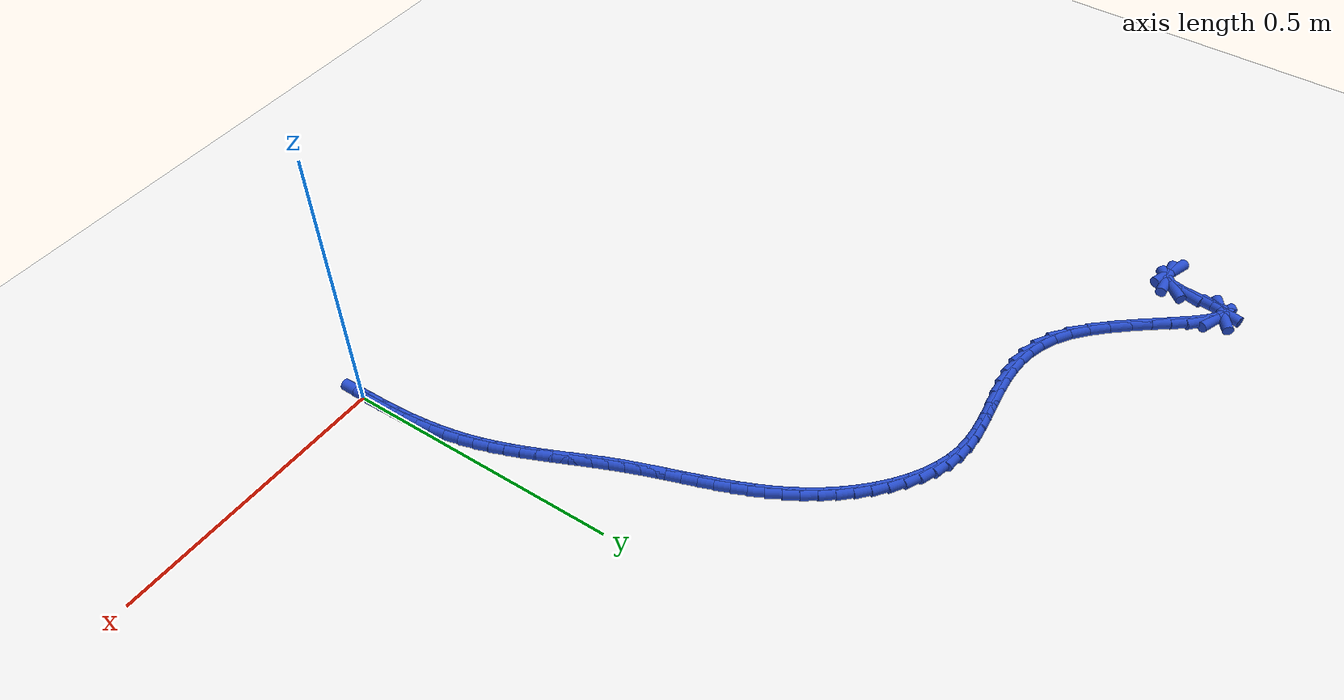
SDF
<sdf version="1.6">
 <world name="default">
  <model name="ground_plane">
   <static>1</static>
   <link name="link">
    <collision name="collision">
     <geometry><plane><normal>0 0 1</normal><size>100 100</size></plane></geometry>
     <surface><friction><ode><mu>100</mu><mu2>50</mu2></ode></friction></surface>
    </collision>
    <visual name="visual">
     <cast_shadows>0</cast_shadows>
     <geometry><plane><normal>0 0 1</normal><size>100 100</size></plane></geometry>
     <material>
      <script><uri>file://media/materials/scripts/gazebo.material</uri><name>Gazebo/WhiteGlow</name></script>
     </material>
    </visual>
   </link>
  </model>
  <model name="line">
   <link name="link_0">
    <pose>6.505213034913027e-19 -5.551115123125783e-17 0.01 0 1.57 -1.5686087319512148</pose>
    <collision name="collision">
     <geometry><cylinder><radius>0.01</radius><length>0.08</length></cylinder></geometry>
    </collision>
    <visual name="visual">
     <material>
      <script><name>Gazebo/Blue</name><uri>file://media/materials/scripts/gazebo.material</uri></script>
     </material>
     <geometry><cylinder><radius>0.01</radius><length>0.08</length></cylinder></geometry>
    </visual>
   </link>
   <link name="link_1">
    <pose>-5.87740264083111e-05 0.026866918626301892 0.01 0 1.57 -1.547128762032059</pose>
    <collision name="collision">
     <geometry><cylinder><radius>0.01</radius><length>0.08</length></cylinder></geometry>
    </collision>
    <visual name="visual">
     <material>
      <script><name>Gazebo/Blue</name><uri>file://media/materials/scripts/gazebo.material</uri></script>
     </material>
     <geometry><cylinder><radius>0.01</radius><length>0.08</length></cylinder></geometry>
    </visual>
   </link>
   <link name="link_2">
    <pose>-0.0006926571728951053 0.05364469619251644 0.01 0 1.57 -1.5219949270998772</pose>
    <collision name="collision">
     <geometry><cylinder><radius>0.01</radius><length>0.08</length></cylinder></geometry>
    </collision>
    <visual name="visual">
     <material>
      <script><name>Gazebo/Blue</name><uri>file://media/materials/scripts/gazebo.material</uri></script>
     </material>
     <geometry><cylinder><radius>0.01</radius><length>0.08</length></cylinder></geometry>
    </visual>
   </link>
   <link name="link_3">
    <pose>-0.0019944166031671848 0.08029815000768363 0.01 0 1.57 -1.4931086927876336</pose>
    <collision name="collision">
     <geometry><cylinder><radius>0.01</radius><length>0.08</length></cylinder></geometry>
    </collision>
    <visual name="visual">
     <material>
      <script><name>Gazebo/Blue</name><uri>file://media/materials/scripts/gazebo.material</uri></script>
     </material>
     <geometry><cylinder><radius>0.01</radius><length>0.08</length></cylinder></geometry>
    </visual>
   </link>
   <link name="link_4">
    <pose>-0.00405681948093135 0.10679209738084348 0.01 0 1.57 -1.4603767294404082</pose>
    <collision name="collision">
     <geometry><cylinder><radius>0.01</radius><length>0.08</length></cylinder></geometry>
    </collision>
    <visual name="visual">
     <material>
      <script><name>Gazebo/Blue</name><uri>file://media/materials/scripts/gazebo.material</uri></script>
     </material>
     <geometry><cylinder><radius>0.01</radius><length>0.08</length></cylinder></geometry>
    </visual>
   </link>
   <link name="link_5">
    <pose>-0.006972632969894407 0.13309135562103608 0.01 0 1.57 -1.4237232285010475</pose>
    <collision name="collision">
     <geometry><cylinder><radius>0.01</radius><length>0.08</length></cylinder></geometry>
    </collision>
    <visual name="visual">
     <material>
      <script><name>Gazebo/Blue</name><uri>file://media/materials/scripts/gazebo.material</uri></script>
     </material>
     <geometry><cylinder><radius>0.01</radius><length>0.08</length></cylinder></geometry>
    </visual>
   </link>
   <link name="link_6">
    <pose>-0.010834624233763152 0.1591607420373014 0.01 0 1.57 -1.3831049552878407</pose>
    <collision name="collision">
     <geometry><cylinder><radius>0.01</radius><length>0.08</length></cylinder></geometry>
    </collision>
    <visual name="visual">
     <material>
      <script><name>Gazebo/Blue</name><uri>file://media/materials/scripts/gazebo.material</uri></script>
     </material>
     <geometry><cylinder><radius>0.01</radius><length>0.08</length></cylinder></geometry>
    </visual>
   </link>
   <link name="link_7">
    <pose>-0.015735560436244394 0.18496507393867967 0.01 0 1.57 -1.3385288146965135</pose>
    <collision name="collision">
     <geometry><cylinder><radius>0.01</radius><length>0.08</length></cylinder></geometry>
    </collision>
    <visual name="visual">
     <material>
      <script><name>Gazebo/Blue</name><uri>file://media/materials/scripts/gazebo.material</uri></script>
     </material>
     <geometry><cylinder><radius>0.01</radius><length>0.08</length></cylinder></geometry>
    </visual>
   </link>
   <link name="link_8">
    <pose>-0.02176820874104493 0.2104691686342107 0.01 0 1.57 -1.2903570548218142</pose>
    <collision name="collision">
     <geometry><cylinder><radius>0.01</radius><length>0.08</length></cylinder></geometry>
    </collision>
    <visual name="visual">
     <material>
      <script><name>Gazebo/Blue</name><uri>file://media/materials/scripts/gazebo.material</uri></script>
     </material>
     <geometry><cylinder><radius>0.01</radius><length>0.08</length></cylinder></geometry>
    </visual>
   </link>
   <link name="link_9">
    <pose>-0.02901818906126157 0.23564009117872278 0.01 0 1.57 -1.2446635823595167</pose>
    <collision name="collision">
     <geometry><cylinder><radius>0.01</radius><length>0.08</length></cylinder></geometry>
    </collision>
    <visual name="visual">
     <material>
      <script><name>Gazebo/Blue</name><uri>file://media/materials/scripts/gazebo.material</uri></script>
     </material>
     <geometry><cylinder><radius>0.01</radius><length>0.08</length></cylinder></geometry>
    </visual>
   </link>
   <link name="link_10">
    <pose>-0.03742315385184375 0.26049144105671185 0.01 0 1.57 -1.2071405693610882</pose>
    <collision name="collision">
     <geometry><cylinder><radius>0.01</radius><length>0.08</length></cylinder></geometry>
    </collision>
    <visual name="visual">
     <material>
      <script><name>Gazebo/Blue</name><uri>file://media/materials/scripts/gazebo.material</uri></script>
     </material>
     <geometry><cylinder><radius>0.01</radius><length>0.08</length></cylinder></geometry>
    </visual>
   </link>
   <link name="link_11">
    <pose>-0.04678137299843718 0.28508065231230845 0.01 0 1.57 -1.1779847370844352</pose>
    <collision name="collision">
     <geometry><cylinder><radius>0.01</radius><length>0.08</length></cylinder></geometry>
    </collision>
    <visual name="visual">
     <material>
      <script><name>Gazebo/Blue</name><uri>file://media/materials/scripts/gazebo.material</uri></script>
     </material>
     <geometry><cylinder><radius>0.01</radius><length>0.08</length></cylinder></geometry>
    </visual>
   </link>
   <link name="link_12">
    <pose>-0.056885688036905566 0.30946686615664004 0.01 0 1.57 -1.157097907797772</pose>
    <collision name="collision">
     <geometry><cylinder><radius>0.01</radius><length>0.08</length></cylinder></geometry>
    </collision>
    <visual name="visual">
     <material>
      <script><name>Gazebo/Blue</name><uri>file://media/materials/scripts/gazebo.material</uri></script>
     </material>
     <geometry><cylinder><radius>0.01</radius><length>0.08</length></cylinder></geometry>
    </visual>
   </link>
   <link name="link_13">
    <pose>-0.06752894050311259 0.33370922380083395 0.01 0 1.57 -1.1443649214348135</pose>
    <collision name="collision">
     <geometry><cylinder><radius>0.01</radius><length>0.08</length></cylinder></geometry>
    </collision>
    <visual name="visual">
     <material>
      <script><name>Gazebo/Blue</name><uri>file://media/materials/scripts/gazebo.material</uri></script>
     </material>
     <geometry><cylinder><radius>0.01</radius><length>0.08</length></cylinder></geometry>
    </visual>
   </link>
   <link name="link_14">
    <pose>-0.07850397193292197 0.3578668664560176 0.01 0 1.57 -1.139695200061825</pose>
    <collision name="collision">
     <geometry><cylinder><radius>0.01</radius><length>0.08</length></cylinder></geometry>
    </collision>
    <visual name="visual">
     <material>
      <script><name>Gazebo/Blue</name><uri>file://media/materials/scripts/gazebo.material</uri></script>
     </material>
     <geometry><cylinder><radius>0.01</radius><length>0.08</length></cylinder></geometry>
    </visual>
   </link>
   <link name="link_15">
    <pose>-0.08960362386219746 0.3819989353333187 0.01 0 1.57 -1.1430467912441684</pose>
    <collision name="collision">
     <geometry><cylinder><radius>0.01</radius><length>0.08</length></cylinder></geometry>
    </collision>
    <visual name="visual">
     <material>
      <script><name>Gazebo/Blue</name><uri>file://media/materials/scripts/gazebo.material</uri></script>
     </material>
     <geometry><cylinder><radius>0.01</radius><length>0.08</length></cylinder></geometry>
    </visual>
   </link>
   <link name="link_16">
    <pose>-0.10062073782680275 0.4061645716438645 0.01 0 1.57 -1.1544347715538974</pose>
    <collision name="collision">
     <geometry><cylinder><radius>0.01</radius><length>0.08</length></cylinder></geometry>
    </collision>
    <visual name="visual">
     <material>
      <script><name>Gazebo/Blue</name><uri>file://media/materials/scripts/gazebo.material</uri></script>
     </material>
     <geometry><cylinder><radius>0.01</radius><length>0.08</length></cylinder></geometry>
    </visual>
   </link>
   <link name="link_17">
    <pose>-0.11134815536260154 0.4304229165987823 0.01 0 1.57 -1.1739037138108221</pose>
    <collision name="collision">
     <geometry><cylinder><radius>0.01</radius><length>0.08</length></cylinder></geometry>
    </collision>
    <visual name="visual">
     <material>
      <script><name>Gazebo/Blue</name><uri>file://media/materials/scripts/gazebo.material</uri></script>
     </material>
     <geometry><cylinder><radius>0.01</radius><length>0.08</length></cylinder></geometry>
    </visual>
   </link>
   <link name="link_18">
    <pose>-0.12157925752687783 0.4548329469520125 0.01 0 1.57 -1.1970475792879767</pose>
    <collision name="collision">
     <geometry><cylinder><radius>0.01</radius><length>0.08</length></cylinder></geometry>
    </collision>
    <visual name="visual">
     <material>
      <script><name>Gazebo/Blue</name><uri>file://media/materials/scripts/gazebo.material</uri></script>
     </material>
     <geometry><cylinder><radius>0.01</radius><length>0.08</length></cylinder></geometry>
    </visual>
   </link>
   <link name="link_19">
    <pose>-0.1312214257653941 0.4794188898025247 0.01 0 1.57 -1.2138346116632008</pose>
    <collision name="collision">
     <geometry><cylinder><radius>0.01</radius><length>0.08</length></cylinder></geometry>
    </collision>
    <visual name="visual">
     <material>
      <script><name>Gazebo/Blue</name><uri>file://media/materials/scripts/gazebo.material</uri></script>
     </material>
     <geometry><cylinder><radius>0.01</radius><length>0.08</length></cylinder></geometry>
    </visual>
   </link>
   <link name="link_20">
    <pose>-0.14043620599054032 0.5041274977104818 0.01 0 1.57 -1.2228487040770044</pose>
    <collision name="collision">
     <geometry><cylinder><radius>0.01</radius><length>0.08</length></cylinder></geometry>
    </collision>
    <visual name="visual">
     <material>
      <script><name>Gazebo/Blue</name><uri>file://media/materials/scripts/gazebo.material</uri></script>
     </material>
     <geometry><cylinder><radius>0.01</radius><length>0.08</length></cylinder></geometry>
    </visual>
   </link>
   <link name="link_21">
    <pose>-0.14941950550877955 0.5288950491788588 0.01 0 1.57 -1.2240569381717366</pose>
    <collision name="collision">
     <geometry><cylinder><radius>0.01</radius><length>0.08</length></cylinder></geometry>
    </collision>
    <visual name="visual">
     <material>
      <script><name>Gazebo/Blue</name><uri>file://media/materials/scripts/gazebo.material</uri></script>
     </material>
     <geometry><cylinder><radius>0.01</radius><length>0.08</length></cylinder></geometry>
    </visual>
   </link>
   <link name="link_22">
    <pose>-0.15836723162657484 0.55365782271063 0.01 0 1.57 -1.2174433859761682</pose>
    <collision name="collision">
     <geometry><cylinder><radius>0.01</radius><length>0.08</length></cylinder></geometry>
    </collision>
    <visual name="visual">
     <material>
      <script><name>Gazebo/Blue</name><uri>file://media/materials/scripts/gazebo.material</uri></script>
     </material>
     <geometry><cylinder><radius>0.01</radius><length>0.08</length></cylinder></geometry>
    </visual>
   </link>
   <link name="link_23">
    <pose>-0.16747529165038938 0.5783520968087708 0.01 0 1.57 -1.2030070187508424</pose>
    <collision name="collision">
     <geometry><cylinder><radius>0.01</radius><length>0.08</length></cylinder></geometry>
    </collision>
    <visual name="visual">
     <material>
      <script><name>Gazebo/Blue</name><uri>file://media/materials/scripts/gazebo.material</uri></script>
     </material>
     <geometry><cylinder><radius>0.01</radius><length>0.08</length></cylinder></geometry>
    </visual>
   </link>
   <link name="link_24">
    <pose>-0.1769395928866861 0.6029141499762559 0.01 0 1.57 -1.1807738515280444</pose>
    <collision name="collision">
     <geometry><cylinder><radius>0.01</radius><length>0.08</length></cylinder></geometry>
    </collision>
    <visual name="visual">
     <material>
      <script><name>Gazebo/Blue</name><uri>file://media/materials/scripts/gazebo.material</uri></script>
     </material>
     <geometry><cylinder><radius>0.01</radius><length>0.08</length></cylinder></geometry>
    </visual>
   </link>
   <link name="link_25">
    <pose>-0.18695604264192822 0.6272802607160602 0.01 0 1.57 -1.1508230185935548</pose>
    <collision name="collision">
     <geometry><cylinder><radius>0.01</radius><length>0.08</length></cylinder></geometry>
    </collision>
    <visual name="visual">
     <material>
      <script><name>Gazebo/Blue</name><uri>file://media/materials/scripts/gazebo.material</uri></script>
     </material>
     <geometry><cylinder><radius>0.01</radius><length>0.08</length></cylinder></geometry>
    </visual>
   </link>
   <link name="link_26">
    <pose>-0.1977205482225787 0.6513867075311587 0.01 0 1.57 -1.113325383090786</pose>
    <collision name="collision">
     <geometry><cylinder><radius>0.01</radius><length>0.08</length></cylinder></geometry>
    </collision>
    <visual name="visual">
     <material>
      <script><name>Gazebo/Blue</name><uri>file://media/materials/scripts/gazebo.material</uri></script>
     </material>
     <geometry><cylinder><radius>0.01</radius><length>0.08</length></cylinder></geometry>
    </visual>
   </link>
   <link name="link_27">
    <pose>-0.20942901693510063 0.6751697689245258 0.01 0 1.57 -1.068591139055498</pose>
    <collision name="collision">
     <geometry><cylinder><radius>0.01</radius><length>0.08</length></cylinder></geometry>
    </collision>
    <visual name="visual">
     <material>
      <script><name>Gazebo/Blue</name><uri>file://media/materials/scripts/gazebo.material</uri></script>
     </material>
     <geometry><cylinder><radius>0.01</radius><length>0.08</length></cylinder></geometry>
    </visual>
   </link>
   <link name="link_28">
    <pose>-0.22227735608595725 0.6985657233991371 0.01 0 1.57 -1.0171195089741287</pose>
    <collision name="collision">
     <geometry><cylinder><radius>0.01</radius><length>0.08</length></cylinder></geometry>
    </collision>
    <visual name="visual">
     <material>
      <script><name>Gazebo/Blue</name><uri>file://media/materials/scripts/gazebo.material</uri></script>
     </material>
     <geometry><cylinder><radius>0.01</radius><length>0.08</length></cylinder></geometry>
    </visual>
   </link>
   <link name="link_29">
    <pose>-0.2364614729816115 0.721510849457967 0.01 0 1.57 -0.9597408084259309</pose>
    <collision name="collision">
     <geometry><cylinder><radius>0.01</radius><length>0.08</length></cylinder></geometry>
    </collision>
    <visual name="visual">
     <material>
      <script><name>Gazebo/Blue</name><uri>file://media/materials/scripts/gazebo.material</uri></script>
     </material>
     <geometry><cylinder><radius>0.01</radius><length>0.08</length></cylinder></geometry>
    </visual>
   </link>
   <link name="link_30">
    <pose>-0.25217080556211285 0.7439370180234688 0.01 0 1.57 -0.899408453424222</pose>
    <collision name="collision">
     <geometry><cylinder><radius>0.01</radius><length>0.08</length></cylinder></geometry>
    </collision>
    <visual name="visual">
     <material>
      <script><name>Gazebo/Blue</name><uri>file://media/materials/scripts/gazebo.material</uri></script>
     </material>
     <geometry><cylinder><radius>0.01</radius><length>0.08</length></cylinder></geometry>
    </visual>
   </link>
   <link name="link_31">
    <pose>-0.2694367490758823 0.7656684255033538 0.01 0 1.57 -0.8375553751071845</pose>
    <collision name="collision">
     <geometry><cylinder><radius>0.01</radius><length>0.08</length></cylinder></geometry>
    </collision>
    <visual name="visual">
     <material>
      <script><name>Gazebo/Blue</name><uri>file://media/materials/scripts/gazebo.material</uri></script>
     </material>
     <geometry><cylinder><radius>0.01</radius><length>0.08</length></cylinder></geometry>
    </visual>
   </link>
   <link name="link_32">
    <pose>-0.28812734133071144 0.7864179728511262 0.01 0 1.57 -0.77271760801657</pose>
    <collision name="collision">
     <geometry><cylinder><radius>0.01</radius><length>0.08</length></cylinder></geometry>
    </collision>
    <visual name="visual">
     <material>
      <script><name>Gazebo/Blue</name><uri>file://media/materials/scripts/gazebo.material</uri></script>
     </material>
     <geometry><cylinder><radius>0.01</radius><length>0.08</length></cylinder></geometry>
    </visual>
   </link>
   <link name="link_33">
    <pose>-0.3081030874536311 0.805893429003508 0.01 0 1.57 -0.7032817532625969</pose>
    <collision name="collision">
     <geometry><cylinder><radius>0.01</radius><length>0.08</length></cylinder></geometry>
    </collision>
    <visual name="visual">
     <material>
      <script><name>Gazebo/Blue</name><uri>file://media/materials/scripts/gazebo.material</uri></script>
     </material>
     <geometry><cylinder><radius>0.01</radius><length>0.08</length></cylinder></geometry>
    </visual>
   </link>
   <link name="link_34">
    <pose>-0.3292244925716726 0.8238025628972219 0.01 0 1.57 -0.6275478799582125</pose>
    <collision name="collision">
     <geometry><cylinder><radius>0.01</radius><length>0.08</length></cylinder></geometry>
    </collision>
    <visual name="visual">
     <material>
      <script><name>Gazebo/Blue</name><uri>file://media/materials/scripts/gazebo.material</uri></script>
     </material>
     <geometry><cylinder><radius>0.01</radius><length>0.08</length></cylinder></geometry>
    </visual>
   </link>
   <link name="link_35">
    <pose>-0.35135206181186673 0.83985314346899 0.01 0 1.57 -0.5437147174878636</pose>
    <collision name="collision">
     <geometry><cylinder><radius>0.01</radius><length>0.08</length></cylinder></geometry>
    </collision>
    <visual name="visual">
     <material>
      <script><name>Gazebo/Blue</name><uri>file://media/materials/scripts/gazebo.material</uri></script>
     </material>
     <geometry><cylinder><radius>0.01</radius><length>0.08</length></cylinder></geometry>
    </visual>
   </link>
   <link name="link_36">
    <pose>-0.3743463003012447 0.8537529396555349 0.01 0 1.57 -0.4499327340533218</pose>
    <collision name="collision">
     <geometry><cylinder><radius>0.01</radius><length>0.08</length></cylinder></geometry>
    </collision>
    <visual name="visual">
     <material>
      <script><name>Gazebo/Blue</name><uri>file://media/materials/scripts/gazebo.material</uri></script>
     </material>
     <geometry><cylinder><radius>0.01</radius><length>0.08</length></cylinder></geometry>
    </visual>
   </link>
   <link name="link_37">
    <pose>-0.39806771316683776 0.8652097203935789 0.01 0 1.57 -0.34447214646214636</pose>
    <collision name="collision">
     <geometry><cylinder><radius>0.01</radius><length>0.08</length></cylinder></geometry>
    </collision>
    <visual name="visual">
     <material>
      <script><name>Gazebo/Blue</name><uri>file://media/materials/scripts/gazebo.material</uri></script>
     </material>
     <geometry><cylinder><radius>0.01</radius><length>0.08</length></cylinder></geometry>
    </visual>
   </link>
   <link name="link_38">
    <pose>-0.4223768055356765 0.8739312546198446 0.01 0 1.57 -0.22607082859793198</pose>
    <collision name="collision">
     <geometry><cylinder><radius>0.01</radius><length>0.08</length></cylinder></geometry>
    </collision>
    <visual name="visual">
     <material>
      <script><name>Gazebo/Blue</name><uri>file://media/materials/scripts/gazebo.material</uri></script>
     </material>
     <geometry><cylinder><radius>0.01</radius><length>0.08</length></cylinder></geometry>
    </visual>
   </link>
   <link name="link_39">
    <pose>-0.4471341040816441 0.87962549690458 0.01 0 1.57 -0.10298715858292842</pose>
    <collision name="collision">
     <geometry><cylinder><radius>0.01</radius><length>0.08</length></cylinder></geometry>
    </collision>
    <visual name="visual">
     <material>
      <script><name>Gazebo/Blue</name><uri>file://media/materials/scripts/gazebo.material</uri></script>
     </material>
     <geometry><cylinder><radius>0.01</radius><length>0.08</length></cylinder></geometry>
    </visual>
   </link>
   <link name="link_40">
    <pose>-0.47222548090375766 0.8822187613588304 0.01 0 1.57 -0.002320954017408585</pose>
    <collision name="collision">
     <geometry><cylinder><radius>0.01</radius><length>0.08</length></cylinder></geometry>
    </collision>
    <visual name="visual">
     <material>
      <script><name>Gazebo/Blue</name><uri>file://media/materials/scripts/gazebo.material</uri></script>
     </material>
     <geometry><cylinder><radius>0.01</radius><length>0.08</length></cylinder></geometry>
    </visual>
   </link>
   <link name="link_41">
    <pose>-0.4976111311162816 0.8822776803914713 0.01 0 1.57 0.06974142340890807</pose>
    <collision name="collision">
     <geometry><cylinder><radius>0.01</radius><length>0.08</length></cylinder></geometry>
    </collision>
    <visual name="visual">
     <material>
      <script><name>Gazebo/Blue</name><uri>file://media/materials/scripts/gazebo.material</uri></script>
     </material>
     <geometry><cylinder><radius>0.01</radius><length>0.08</length></cylinder></geometry>
    </visual>
   </link>
   <link name="link_42">
    <pose>-0.5232648028691199 0.8804856504673396 0.01 0 1.57 0.11379594841330783</pose>
    <collision name="collision">
     <geometry><cylinder><radius>0.01</radius><length>0.08</length></cylinder></geometry>
    </collision>
    <visual name="visual">
     <material>
      <script><name>Gazebo/Blue</name><uri>file://media/materials/scripts/gazebo.material</uri></script>
     </material>
     <geometry><cylinder><radius>0.01</radius><length>0.08</length></cylinder></geometry>
    </visual>
   </link>
   <link name="link_43">
    <pose>-0.5491602443121776 0.8775260680512726 0.01 0 1.57 0.13113178850228505</pose>
    <collision name="collision">
     <geometry><cylinder><radius>0.01</radius><length>0.08</length></cylinder></geometry>
    </collision>
    <visual name="visual">
     <material>
      <script><name>Gazebo/Blue</name><uri>file://media/materials/scripts/gazebo.material</uri></script>
     </material>
     <geometry><cylinder><radius>0.01</radius><length>0.08</length></cylinder></geometry>
    </visual>
   </link>
   <link name="link_44">
    <pose>-0.5752712035953587 0.8740823296081065 0.01 0 1.57 0.12274372895697669</pose>
    <collision name="collision">
     <geometry><cylinder><radius>0.01</radius><length>0.08</length></cylinder></geometry>
    </collision>
    <visual name="visual">
     <material>
      <script><name>Gazebo/Blue</name><uri>file://media/materials/scripts/gazebo.material</uri></script>
     </material>
     <geometry><cylinder><radius>0.01</radius><length>0.08</length></cylinder></geometry>
    </visual>
   </link>
   <link name="link_45">
    <pose>-0.6015714288685676 0.8708378316026787 0.01 0 1.57 0.0890147874672357</pose>
    <collision name="collision">
     <geometry><cylinder><radius>0.01</radius><length>0.08</length></cylinder></geometry>
    </collision>
    <visual name="visual">
     <material>
      <script><name>Gazebo/Blue</name><uri>file://media/materials/scripts/gazebo.material</uri></script>
     </material>
     <geometry><cylinder><radius>0.01</radius><length>0.08</length></cylinder></geometry>
    </visual>
   </link>
   <link name="link_46">
    <pose>-0.628034668281709 0.8684759704998253 0.01 0 1.57 0.029909412094079497</pose>
    <collision name="collision">
     <geometry><cylinder><radius>0.01</radius><length>0.08</length></cylinder></geometry>
    </collision>
    <visual name="visual">
     <material>
      <script><name>Gazebo/Blue</name><uri>file://media/materials/scripts/gazebo.material</uri></script>
     </material>
     <geometry><cylinder><radius>0.01</radius><length>0.08</length></cylinder></geometry>
    </visual>
   </link>
   <link name="link_47">
    <pose>-0.654634669984687 0.8676801427643837 0.01 0 1.57 -0.054366971205347565</pose>
    <collision name="collision">
     <geometry><cylinder><radius>0.01</radius><length>0.08</length></cylinder></geometry>
    </collision>
    <visual name="visual">
     <material>
      <script><name>Gazebo/Blue</name><uri>file://media/materials/scripts/gazebo.material</uri></script>
     </material>
     <geometry><cylinder><radius>0.01</radius><length>0.08</length></cylinder></geometry>
    </visual>
   </link>
   <link name="link_48">
    <pose>-0.6813451821274064 0.8691337448611905 0.01 0 1.57 -0.16226533208964797</pose>
    <collision name="collision">
     <geometry><cylinder><radius>0.01</radius><length>0.08</length></cylinder></geometry>
    </collision>
    <visual name="visual">
     <material>
      <script><name>Gazebo/Blue</name><uri>file://media/materials/scripts/gazebo.material</uri></script>
     </material>
     <geometry><cylinder><radius>0.01</radius><length>0.08</length></cylinder></geometry>
    </visual>
   </link>
   <link name="link_49">
    <pose>-0.7081399528597709 0.8735201732550825 0.01 0 1.57 -0.28963882757512166</pose>
    <collision name="collision">
     <geometry><cylinder><radius>0.01</radius><length>0.08</length></cylinder></geometry>
    </collision>
    <visual name="visual">
     <material>
      <script><name>Gazebo/Blue</name><uri>file://media/materials/scripts/gazebo.material</uri></script>
     </material>
     <geometry><cylinder><radius>0.01</radius><length>0.08</length></cylinder></geometry>
    </visual>
   </link>
   <link name="link_50">
    <pose>-0.7349927303316856 0.8815228244108965 0.01 0 1.57 -0.42915326692551714</pose>
    <collision name="collision">
     <geometry><cylinder><radius>0.01</radius><length>0.08</length></cylinder></geometry>
    </collision>
    <visual name="visual">
     <material>
      <script><name>Gazebo/Blue</name><uri>file://media/materials/scripts/gazebo.material</uri></script>
     </material>
     <geometry><cylinder><radius>0.01</radius><length>0.08</length></cylinder></geometry>
    </visual>
   </link>
   <link name="link_51">
    <pose>-0.7618772626930542 0.8938250947934692 0.01 0 1.57 -0.5713068168496578</pose>
    <collision name="collision">
     <geometry><cylinder><radius>0.01</radius><length>0.08</length></cylinder></geometry>
    </collision>
    <visual name="visual">
     <material>
      <script><name>Gazebo/Blue</name><uri>file://media/materials/scripts/gazebo.material</uri></script>
     </material>
     <geometry><cylinder><radius>0.01</radius><length>0.08</length></cylinder></geometry>
    </visual>
   </link>
   <link name="link_52">
    <pose>-0.7887672980937819 0.9111103808676373 0.01 0 1.57 -0.702711851077366</pose>
    <collision name="collision">
     <geometry><cylinder><radius>0.01</radius><length>0.08</length></cylinder></geometry>
    </collision>
    <visual name="visual">
     <material>
      <script><name>Gazebo/Blue</name><uri>file://media/materials/scripts/gazebo.material</uri></script>
     </material>
     <geometry><cylinder><radius>0.01</radius><length>0.08</length></cylinder></geometry>
    </visual>
   </link>
   <link name="link_53">
    <pose>-0.8156023096300639 0.9338378854064251 0.01 0 1.57 -0.7954593921653529</pose>
    <collision name="collision">
     <geometry><cylinder><radius>0.01</radius><length>0.08</length></cylinder></geometry>
    </collision>
    <visual name="visual">
     <material>
      <script><name>Gazebo/Blue</name><uri>file://media/materials/scripts/gazebo.material</uri></script>
     </material>
     <geometry><cylinder><radius>0.01</radius><length>0.08</length></cylinder></geometry>
    </visual>
   </link>
   <link name="link_54">
    <pose>-0.8420742794039541 0.96084796850682 0.01 0 1.57 -0.8529702942589156</pose>
    <collision name="collision">
     <geometry><cylinder><radius>0.01</radius><length>0.08</length></cylinder></geometry>
    </collision>
    <visual name="visual">
     <material>
      <script><name>Gazebo/Blue</name><uri>file://media/materials/scripts/gazebo.material</uri></script>
     </material>
     <geometry><cylinder><radius>0.01</radius><length>0.08</length></cylinder></geometry>
    </visual>
   </link>
   <link name="link_55">
    <pose>-0.8677665016303032 0.9902700610023644 0.01 0 1.57 -0.885423175201356</pose>
    <collision name="collision">
     <geometry><cylinder><radius>0.01</radius><length>0.08</length></cylinder></geometry>
    </collision>
    <visual name="visual">
     <material>
      <script><name>Gazebo/Blue</name><uri>file://media/materials/scripts/gazebo.material</uri></script>
     </material>
     <geometry><cylinder><radius>0.01</radius><length>0.08</length></cylinder></geometry>
    </visual>
   </link>
   <link name="link_56">
    <pose>-0.8922618040260977 1.0202305423563838 0.01 0 1.57 -0.8964600163468273</pose>
    <collision name="collision">
     <geometry><cylinder><radius>0.01</radius><length>0.08</length></cylinder></geometry>
    </collision>
    <visual name="visual">
     <material>
      <script><name>Gazebo/Blue</name><uri>file://media/materials/scripts/gazebo.material</uri></script>
     </material>
     <geometry><cylinder><radius>0.01</radius><length>0.08</length></cylinder></geometry>
    </visual>
   </link>
   <link name="link_57">
    <pose>-0.9151430143083257 1.048855792032206 0.01 0 1.57 -0.8837787406177134</pose>
    <collision name="collision">
     <geometry><cylinder><radius>0.01</radius><length>0.08</length></cylinder></geometry>
    </collision>
    <visual name="visual">
     <material>
      <script><name>Gazebo/Blue</name><uri>file://media/materials/scripts/gazebo.material</uri></script>
     </material>
     <geometry><cylinder><radius>0.01</radius><length>0.08</length></cylinder></geometry>
    </visual>
   </link>
   <link name="link_58">
    <pose>-0.9359929601939737 1.0742721894931553 0.01 0 1.57 -0.8352443787971953</pose>
    <collision name="collision">
     <geometry><cylinder><radius>0.01</radius><length>0.08</length></cylinder></geometry>
    </collision>
    <visual name="visual">
     <material>
      <script><name>Gazebo/Blue</name><uri>file://media/materials/scripts/gazebo.material</uri></script>
     </material>
     <geometry><cylinder><radius>0.01</radius><length>0.08</length></cylinder></geometry>
    </visual>
   </link>
   <link name="link_59">
    <pose>-0.9543944694000296 1.0946061142025592 0.01 0 1.57 -0.7108981038551088</pose>
    <collision name="collision">
     <geometry><cylinder><radius>0.01</radius><length>0.08</length></cylinder></geometry>
    </collision>
    <visual name="visual">
     <material>
      <script><name>Gazebo/Blue</name><uri>file://media/materials/scripts/gazebo.material</uri></script>
     </material>
     <geometry><cylinder><radius>0.01</radius><length>0.08</length></cylinder></geometry>
    </visual>
   </link>
   <link name="link_60">
    <pose>-0.9699303696434805 1.107983945623744 0.01 0 1.57 -0.3554177809435994</pose>
    <collision name="collision">
     <geometry><cylinder><radius>0.01</radius><length>0.08</length></cylinder></geometry>
    </collision>
    <visual name="visual">
     <material>
      <script><name>Gazebo/Blue</name><uri>file://media/materials/scripts/gazebo.material</uri></script>
     </material>
     <geometry><cylinder><radius>0.01</radius><length>0.08</length></cylinder></geometry>
    </visual>
   </link>
   <link name="link_61">
    <pose>-0.9821834886413139 1.1125320632200357 0.01 0 1.57 0.6237872123146154</pose>
    <collision name="collision">
     <geometry><cylinder><radius>0.01</radius><length>0.08</length></cylinder></geometry>
    </collision>
    <visual name="visual">
     <material>
      <script><name>Gazebo/Blue</name><uri>file://media/materials/scripts/gazebo.material</uri></script>
     </material>
     <geometry><cylinder><radius>0.01</radius><length>0.08</length></cylinder></geometry>
    </visual>
   </link>
   <link name="link_62">
    <pose>-0.9907366541105165 1.1063768464547605 0.01 0 1.57 1.3309585675446347</pose>
    <collision name="collision">
     <geometry><cylinder><radius>0.01</radius><length>0.08</length></cylinder></geometry>
    </collision>
    <visual name="visual">
     <material>
      <script><name>Gazebo/Blue</name><uri>file://media/materials/scripts/gazebo.material</uri></script>
     </material>
     <geometry><cylinder><radius>0.01</radius><length>0.08</length></cylinder></geometry>
    </visual>
   </link>
   <link name="link_63">
    <pose>-0.9952581744897983 1.0878873048573479 0.01 0 1.57 1.5032697886254116</pose>
    <collision name="collision">
     <geometry><cylinder><radius>0.01</radius><length>0.08</length></cylinder></geometry>
    </collision>
    <visual name="visual">
     <material>
      <script><name>Gazebo/Blue</name><uri>file://media/materials/scripts/gazebo.material</uri></script>
     </material>
     <geometry><cylinder><radius>0.01</radius><length>0.08</length></cylinder></geometry>
    </visual>
   </link>
   <link name="link_64">
    <pose>-0.9971250705925138 1.0602824888560398 0.01 0 1.57 1.4963026147878422</pose>
    <collision name="collision">
     <geometry><cylinder><radius>0.01</radius><length>0.08</length></cylinder></geometry>
    </collision>
    <visual name="visual">
     <material>
      <script><name>Gazebo/Blue</name><uri>file://media/materials/scripts/gazebo.material</uri></script>
     </material>
     <geometry><cylinder><radius>0.01</radius><length>0.08</length></cylinder></geometry>
    </visual>
   </link>
   <link name="link_65">
    <pose>-0.9992912682402216 1.0312573653041073 0.01 0 1.57 1.333687186073003</pose>
    <collision name="collision">
     <geometry><cylinder><radius>0.01</radius><length>0.08</length></cylinder></geometry>
    </collision>
    <visual name="visual">
     <material>
      <script><name>Gazebo/Blue</name><uri>file://media/materials/scripts/gazebo.material</uri></script>
     </material>
     <geometry><cylinder><radius>0.01</radius><length>0.08</length></cylinder></geometry>
    </visual>
   </link>
   <link name="link_66">
    <pose>-1.004756712619229 1.0086406301502508 0.01 0 1.57 0.8314963425214267</pose>
    <collision name="collision">
     <geometry><cylinder><radius>0.01</radius><length>0.08</length></cylinder></geometry>
    </collision>
    <visual name="visual">
     <material>
      <script><name>Gazebo/Blue</name><uri>file://media/materials/scripts/gazebo.material</uri></script>
     </material>
     <geometry><cylinder><radius>0.01</radius><length>0.08</length></cylinder></geometry>
    </visual>
   </link>
   <link name="link_67">
    <pose>-1.0152979522855266 0.9970798031304884 0.01 0 1.57 0.10446281226366583</pose>
    <collision name="collision">
     <geometry><cylinder><radius>0.01</radius><length>0.08</length></cylinder></geometry>
    </collision>
    <visual name="visual">
     <material>
      <script><name>Gazebo/Blue</name><uri>file://media/materials/scripts/gazebo.material</uri></script>
     </material>
     <geometry><cylinder><radius>0.01</radius><length>0.08</length></cylinder></geometry>
    </visual>
   </link>
   <link name="link_68">
    <pose>-1.0304860116292343 0.9954874192350028 0.01 0 1.57 -0.3355795880335293</pose>
    <collision name="collision">
     <geometry><cylinder><radius>0.01</radius><length>0.08</length></cylinder></geometry>
    </collision>
    <visual name="visual">
     <material>
      <script><name>Gazebo/Blue</name><uri>file://media/materials/scripts/gazebo.material</uri></script>
     </material>
     <geometry><cylinder><radius>0.01</radius><length>0.08</length></cylinder></geometry>
    </visual>
   </link>
   <link name="link_281">
    <pose>-3.3358322709285335e-05 0.026860553428043023 0.01 0 1.57 -1.5537415540920962</pose>
    <collision name="collision">
     <geometry><cylinder><radius>0.01</radius><length>0.08</length></cylinder></geometry>
    </collision>
    <visual name="visual">
     <material>
      <script><name>Gazebo/Blue</name><uri>file://media/materials/scripts/gazebo.material</uri></script>
     </material>
     <geometry><cylinder><radius>0.01</radius><length>0.08</length></cylinder></geometry>
    </visual>
   </link>
   <link name="link_282">
    <pose>-0.0004893315433028692 0.053593774606447125 0.01 0 1.57 -1.5616662002073103</pose>
    <collision name="collision">
     <geometry><cylinder><radius>0.01</radius><length>0.08</length></cylinder></geometry>
    </collision>
    <visual name="visual">
     <material>
      <script><name>Gazebo/Blue</name><uri>file://media/materials/scripts/gazebo.material</uri></script>
     </material>
     <geometry><cylinder><radius>0.01</radius><length>0.08</length></cylinder></geometry>
    </visual>
   </link>
  </model>
 </world>
</sdf>
